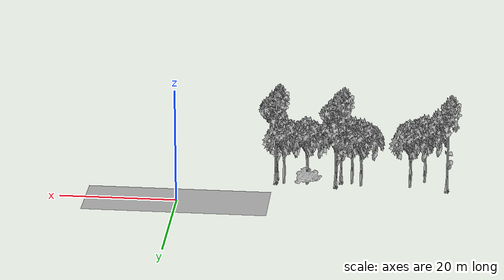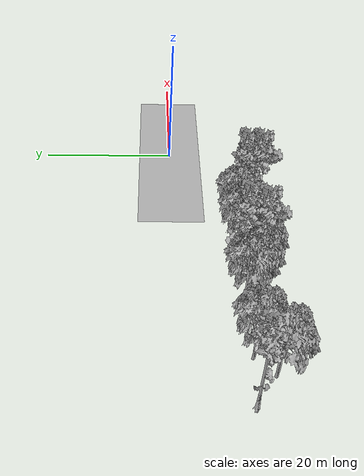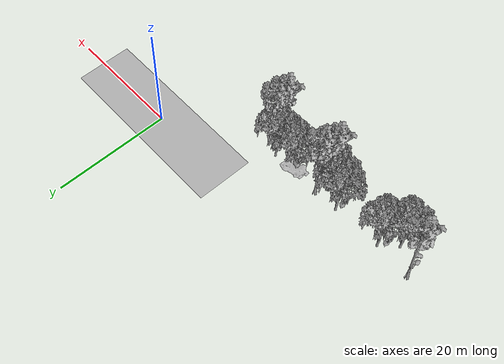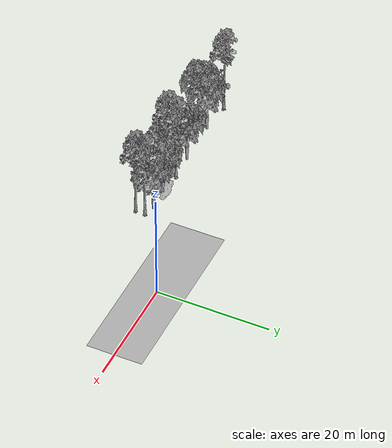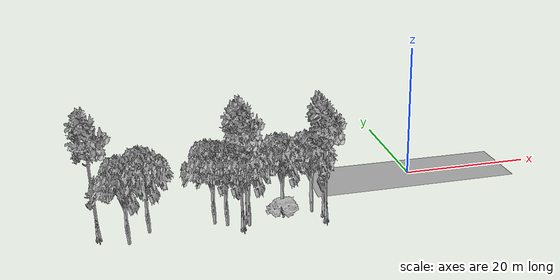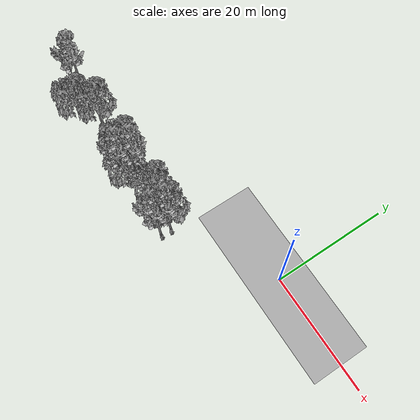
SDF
<sdf version="1.7">
 <world name="default">
  <model name="ground_plane">
   <static>1</static>
   <link name="link">
    <collision name="collision">
     <pose>-50 0 0 0 -0 0</pose>
     <geometry><plane><normal>0 0 1</normal><size>100 100</size></plane></geometry>
     <surface><contact><ode><min_depth>0.01</min_depth><max_vel>0</max_vel></ode></contact></surface>
    </collision>
    <visual name="grass">
     <cast_shadows>0</cast_shadows>
     <geometry>
      <mesh>
       <scale>0.5814285714285714 0.18142857142857144 0.1</scale>
       <uri>file://grass_plane/meshes/grass_plane.dae</uri>
      </mesh>
     </geometry>
    </visual>
   </link>
  </model>
  <model name="Tree 13">
   <static>1</static>
   <pose>-17.65162149736658 -9.048937254308237 0 1.57079 -0 0</pose>
   <link name="link">
    <collision name="collision">
     <geometry><mesh><scale>3.5 5 3.5</scale><uri>model://tree_2/meshes/tree_2.obj</uri></mesh></geometry>
    </collision>
    <visual name="visual">
     <geometry><mesh><scale>3.5 5 3.5</scale><uri>model://tree_2/meshes/tree_2.obj</uri></mesh></geometry>
    </visual>
   </link>
  </model>
  <model name="Tree 77">
   <static>1</static>
   <pose>-39.35711600469566 -9.326324481302146 0 1.57079 -0 0</pose>
   <link name="link">
    <collision name="collision">
     <geometry><mesh><scale>3.5 5 3.5</scale><uri>model://tree_2/meshes/tree_2.obj</uri></mesh></geometry>
    </collision>
    <visual name="visual">
     <geometry><mesh><scale>3.5 5 3.5</scale><uri>model://tree_2/meshes/tree_2.obj</uri></mesh></geometry>
    </visual>
   </link>
  </model>
  <model name="Tree 79">
   <static>1</static>
   <pose>-21.662112763326025 -9.041534157910895 0 1.57079 -0 0</pose>
   <link name="link">
    <collision name="collision">
     <geometry><mesh><scale>3.5 5 3.5</scale><uri>model://tree_2/meshes/tree_2.obj</uri></mesh></geometry>
    </collision>
    <visual name="visual">
     <geometry><mesh><scale>3.5 5 3.5</scale><uri>model://tree_2/meshes/tree_2.obj</uri></mesh></geometry>
    </visual>
   </link>
  </model>
  <model name="Tree 113">
   <static>1</static>
   <pose>-16.156471823535043 -11.621039831251633 0 1.57079 -0 0</pose>
   <link name="link">
    <collision name="collision">
     <geometry><mesh><scale>3.5 5 3.5</scale><uri>model://tree_9/meshes/tree_9.obj</uri></mesh></geometry>
    </collision>
    <visual name="visual">
     <geometry><mesh><scale>3.5 5 3.5</scale><uri>model://tree_9/meshes/tree_9.obj</uri></mesh></geometry>
    </visual>
   </link>
  </model>
  <model name="Tree 117">
   <static>1</static>
   <pose>-26.464783412485193 -9.068209685780946 0 1.57079 -0 0</pose>
   <link name="link">
    <collision name="collision">
     <geometry><mesh><scale>3.5 5 3.5</scale><uri>model://tree_9/meshes/tree_9.obj</uri></mesh></geometry>
    </collision>
    <visual name="visual">
     <geometry><mesh><scale>3.5 5 3.5</scale><uri>model://tree_9/meshes/tree_9.obj</uri></mesh></geometry>
    </visual>
   </link>
  </model>
  <model name="Tree 191">
   <static>1</static>
   <pose>-21.62197915775209 -9.48711315595196 0 1.57079 -0 0</pose>
   <link name="link">
    <collision name="collision">
     <geometry><mesh><scale>3 2 3</scale><uri>model://tree_3/meshes/tree_3.obj</uri></mesh></geometry>
    </collision>
    <visual name="visual">
     <geometry><mesh><scale>3 2 3</scale><uri>model://tree_3/meshes/tree_3.obj</uri></mesh></geometry>
    </visual>
   </link>
  </model>
  <model name="Tree 208">
   <static>1</static>
   <pose>-27.281155414547015 -11.052777507897037 0 1.57079 -0 0</pose>
   <link name="link">
    <collision name="collision">
     <geometry><mesh><scale>3.5 5 3.5</scale><uri>model://tree_9/meshes/tree_9.obj</uri></mesh></geometry>
    </collision>
    <visual name="visual">
     <geometry><mesh><scale>3.5 5 3.5</scale><uri>model://tree_9/meshes/tree_9.obj</uri></mesh></geometry>
    </visual>
   </link>
  </model>
  <model name="Tree 213">
   <static>1</static>
   <pose>-30.928397798963733 -9.113297856806708 0 1.57079 -0 0</pose>
   <link name="link">
    <collision name="collision">
     <geometry><mesh><scale>3.5 5 3.5</scale><uri>model://tree_2/meshes/tree_2.obj</uri></mesh></geometry>
    </collision>
    <visual name="visual">
     <geometry><mesh><scale>3.5 5 3.5</scale><uri>model://tree_2/meshes/tree_2.obj</uri></mesh></geometry>
    </visual>
   </link>
  </model>
  <model name="Tree 233">
   <static>1</static>
   <pose>-29.32586935426024 -10.008796515574165 0 1.57079 -0 0</pose>
   <link name="link">
    <collision name="collision">
     <geometry><mesh><scale>3.5 5 3.5</scale><uri>model://tree_2/meshes/tree_2.obj</uri></mesh></geometry>
    </collision>
    <visual name="visual">
     <geometry><mesh><scale>3.5 5 3.5</scale><uri>model://tree_2/meshes/tree_2.obj</uri></mesh></geometry>
    </visual>
   </link>
  </model>
  <model name="Tree 268">
   <static>1</static>
   <pose>-16.0774603479827 -9.868033003864001 0 1.57079 -0 0</pose>
   <link name="link">
    <collision name="collision">
     <geometry><mesh><scale>3.5 5 3.5</scale><uri>model://tree_9/meshes/tree_9.obj</uri></mesh></geometry>
    </collision>
    <visual name="visual">
     <geometry><mesh><scale>3.5 5 3.5</scale><uri>model://tree_9/meshes/tree_9.obj</uri></mesh></geometry>
    </visual>
   </link>
  </model>
  <model name="Tree 281">
   <static>1</static>
   <pose>-41.78287263417996 -11.717816156062069 0 1.57079 -0 0</pose>
   <link name="link">
    <collision name="collision">
     <geometry><mesh><scale>3.5 5 3.5</scale><uri>model://tree_2/meshes/tree_2.obj</uri></mesh></geometry>
    </collision>
    <visual name="visual">
     <geometry><mesh><scale>3.5 5 3.5</scale><uri>model://tree_2/meshes/tree_2.obj</uri></mesh></geometry>
    </visual>
   </link>
  </model>
  <model name="Tree 283">
   <static>1</static>
   <pose>-45.575333744431866 -9.032232222598202 0 1.57079 -0 0</pose>
   <link name="link">
    <collision name="collision">
     <geometry><mesh><scale>3.5 5 3.5</scale><uri>model://tree_9/meshes/tree_9.obj</uri></mesh></geometry>
    </collision>
    <visual name="visual">
     <geometry><mesh><scale>3.5 5 3.5</scale><uri>model://tree_9/meshes/tree_9.obj</uri></mesh></geometry>
    </visual>
   </link>
  </model>
  <model name="Tree 298">
   <static>1</static>
   <pose>-26.497512124225025 -10.825564512121058 0 1.57079 -0 0</pose>
   <link name="link">
    <collision name="collision">
     <geometry><mesh><scale>3.5 5 3.5</scale><uri>model://tree_2/meshes/tree_2.obj</uri></mesh></geometry>
    </collision>
    <visual name="visual">
     <geometry><mesh><scale>3.5 5 3.5</scale><uri>model://tree_2/meshes/tree_2.obj</uri></mesh></geometry>
    </visual>
   </link>
  </model>
 </world>
</sdf>
